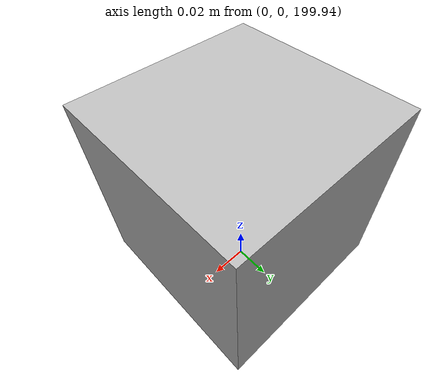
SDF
<sdf version='1.5'>
  <world name='default'>
    <scene>
      <ambient>0.2 0.2 0.2 1</ambient>
      <background>1 1 1 1</background>
      <shadows>0</shadows>
      <grid>0</grid>
    </scene>
    <include>
      <uri>model://sun</uri>
    </include>

    <gui fullscreen='0'>
      <camera name='user_camera'>
        <pose>0 0 5 0 1.57 0</pose>
        <view_controller>orbit</view_controller>
      </camera>
    </gui>

    <model name='camera'>
      <static>true</static>
      <pose>0 0 200 0 1.5707963267949 0</pose>
      <link name='link'>
        <visual name='visual'>
          <geometry><box><size>0.1 0.1 0.1</size></box></geometry>
        </visual>
        <sensor name='my_camera' type='camera'>
          <always_on>1</always_on>
          <update_rate>10</update_rate>
          <visualize>true</visualize>
          <camera>
            <horizontal_fov>0.04</horizontal_fov>
            <image>
              <width>2000</width>
              <height>2000</height>
            </image>
            <clip>
              <near>100</near>
              <far>1000</far>
            </clip>
            <lens>
              <type>orthographic</type>
              <scale_to_hfov>1</scale_to_hfov>
            </lens>
          </camera>
          <plugin name="camera_controller" filename="libgazebo_ros_camera.so">
            <robotNamespace>/</robotNamespace>
            <alwaysOn>true</alwaysOn>
            <updateRate>0.0</updateRate>
            <cameraName>camera</cameraName>
            <imageTopicName>image</imageTopicName>
            <cameraInfoTopicName>camera_info</cameraInfoTopicName>
            <frameName>link</frameName>
            <hackBaseline>0.07</hackBaseline>
            <distortionK1>0.0</distortionK1>
            <distortionK2>0.0</distortionK2>
            <distortionK3>0.0</distortionK3>
            <distortionT1>0.0</distortionT1>
            <distortionT2>0.0</distortionT2>
          </plugin>
        </sensor>
      </link>
    </model>
  </world>
</sdf>
